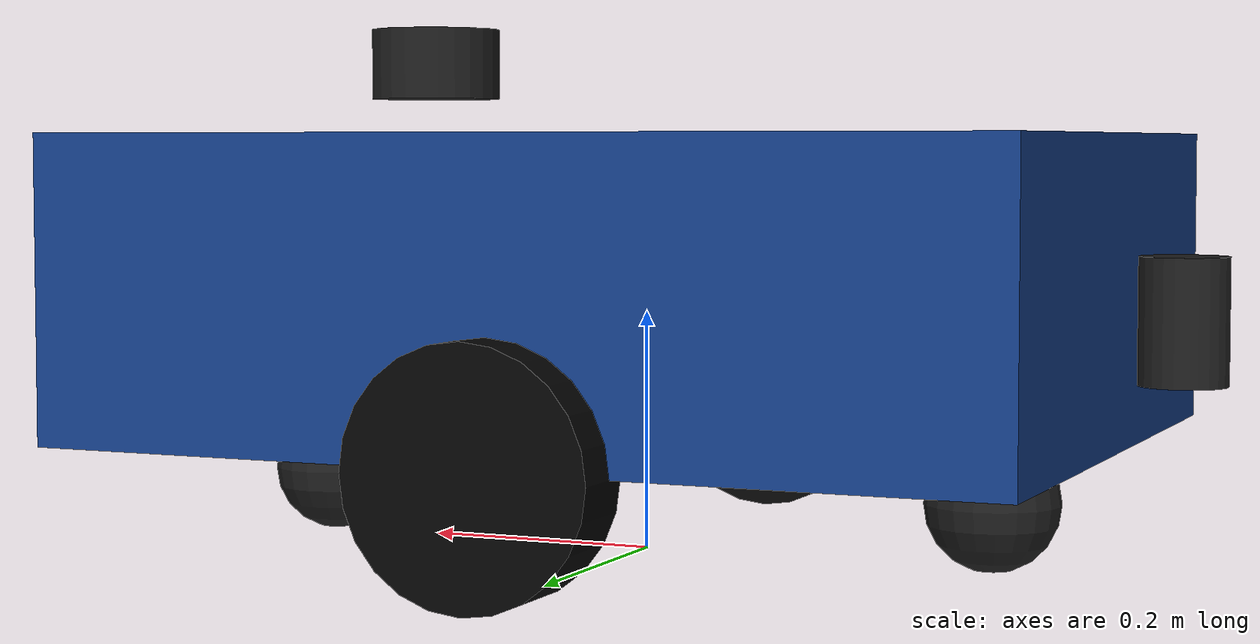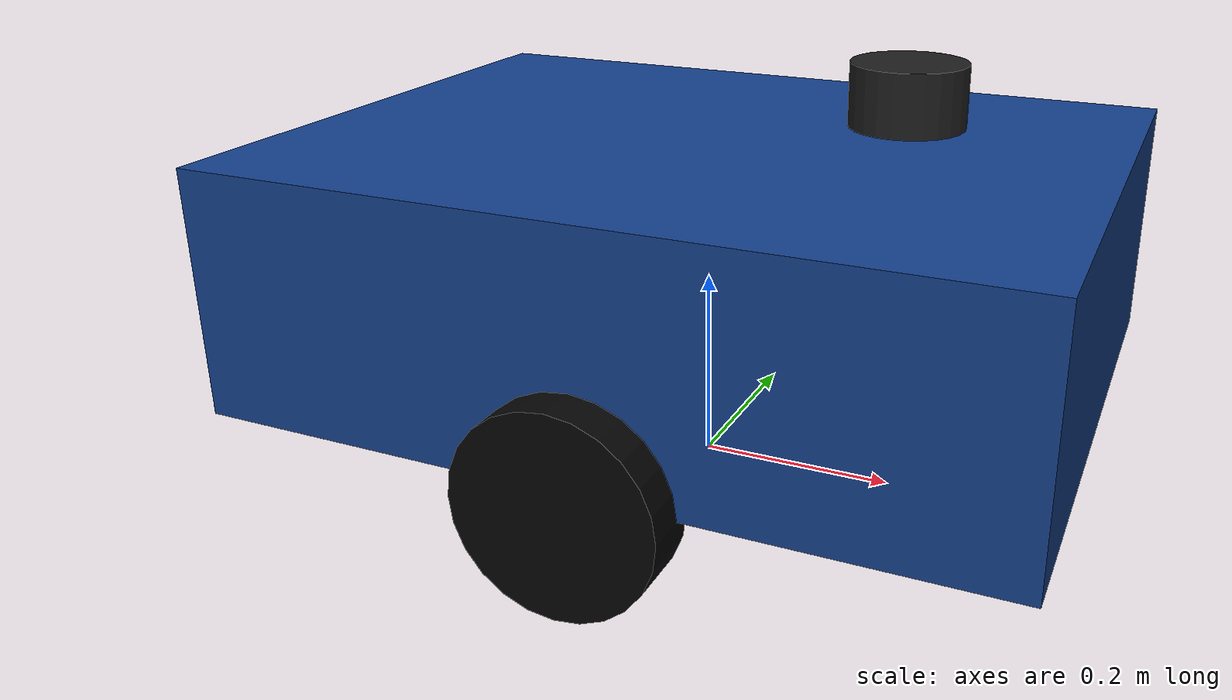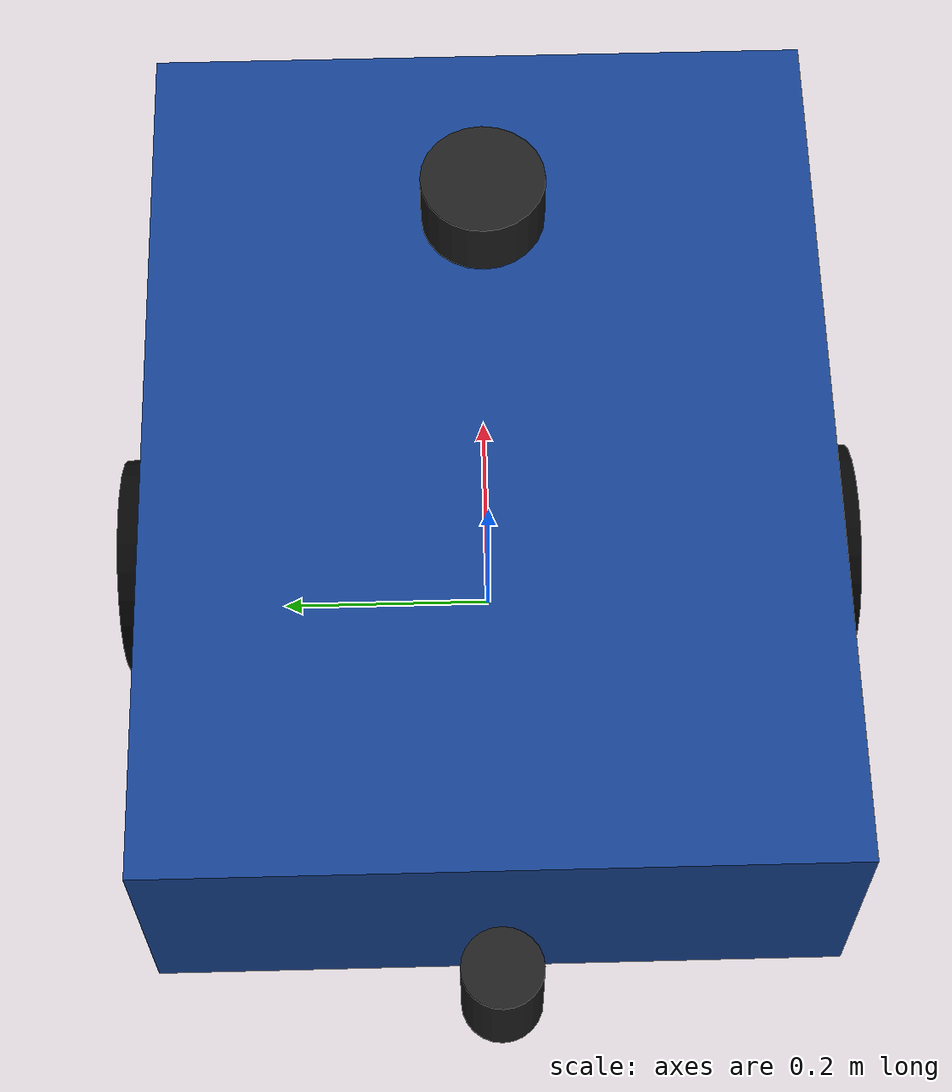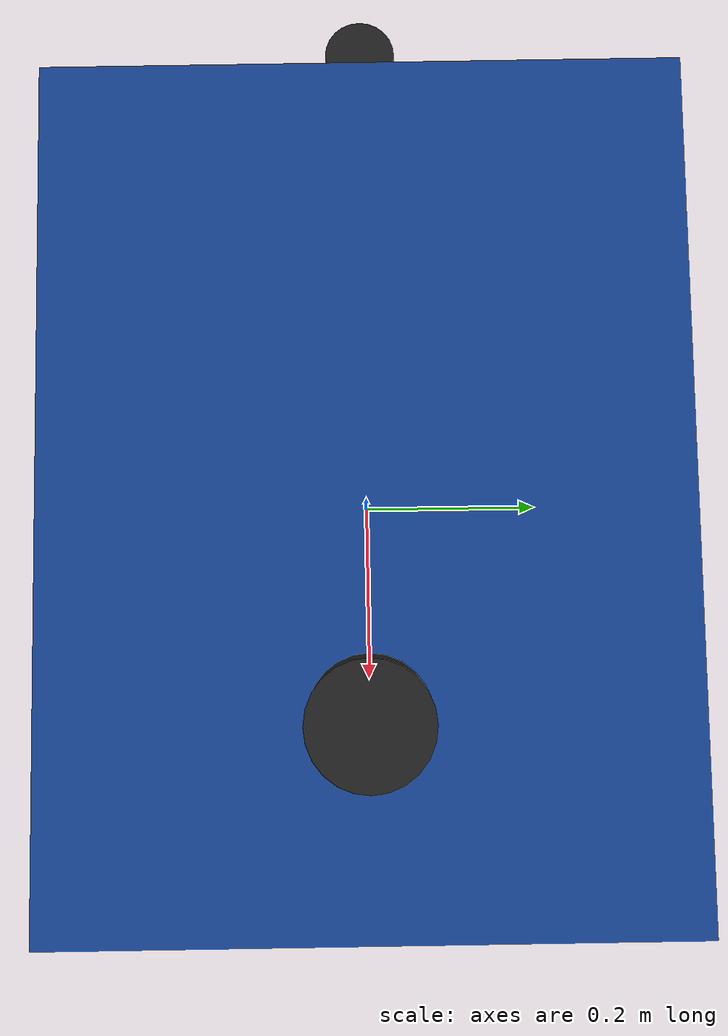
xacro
<?xml version="1.0"?>

<robot xmlns:xacro="http://www.ros.org/wiki/xacro"
       name="autonomous_tugger">

  <!--                    PARAMETERS                             -->

  <xacro:property name="chassis_length" value="0.80"/>
  <xacro:property name="chassis_width"  value="0.60"/>
  <xacro:property name="chassis_height" value="0.25"/>
  <xacro:property name="chassis_mass"   value="45.0"/>

  <xacro:property name="wheel_radius" value="0.10"/>
  <xacro:property name="wheel_width"  value="0.06"/>
  <xacro:property name="wheel_mass"   value="2.0"/>
  <xacro:property name="wheel_y"      value="0.31"/>

  <!--                    MATERIALS                              -->

  <material name="blue">
    <color rgba="0.08 0.25 0.55 1.0"/>
  </material>

  <material name="dark_grey">
    <color rgba="0.12 0.12 0.12 1.0"/>
  </material>

  <material name="black">
    <color rgba="0.02 0.02 0.02 1.0"/>
  </material>

  <!--                   BASE FOOTPRINT                          -->

  <link name="base_footprint"/>

  <joint name="base_footprint_joint" type="fixed">
    <parent link="base_footprint"/>
    <child link="base_link"/>
    <origin xyz="0 0 0.225" rpy="0 0 0"/>
  </joint>

  <!--                     BASE LINK                             -->

  <link name="base_link">

    <visual>
      <geometry>
        <box size="${chassis_length} ${chassis_width} ${chassis_height}"/>
      </geometry>

      <material name="blue"/>
    </visual>

    <collision>
      <geometry>
        <box size="${chassis_length} ${chassis_width} ${chassis_height}"/>
      </geometry>
    </collision>

    <inertial>
      <mass value="${chassis_mass}"/>

      <inertia
        ixx="${(1.0/12.0) * chassis_mass * (chassis_width*chassis_width + chassis_height*chassis_height)}"
        ixy="0"
        ixz="0"
        iyy="${(1.0/12.0) * chassis_mass * (chassis_length*chassis_length + chassis_height*chassis_height)}"
        iyz="0"
        izz="${(1.0/12.0) * chassis_mass * (chassis_length*chassis_length + chassis_width*chassis_width)}"/>
    </inertial>

  </link>

  <!--                    WHEEL MACRO                            -->

  <xacro:macro name="drive_wheel" params="name y">

    <link name="${name}_wheel_link">

      <visual>
        <origin rpy="1.5708 0 0"/>

        <geometry>
          <cylinder
            radius="${wheel_radius}"
            length="${wheel_width}"/>
        </geometry>

        <material name="black"/>
      </visual>

      <collision>
        <origin rpy="1.5708 0 0"/>

        <geometry>
          <cylinder
            radius="${wheel_radius}"
            length="${wheel_width}"/>
        </geometry>
      </collision>

      <inertial>
        <mass value="${wheel_mass}"/>

        <inertia
          ixx="${(1.0/12.0) * wheel_mass * (3*wheel_radius*wheel_radius + wheel_width*wheel_width)}"
          ixy="0"
          ixz="0"
          iyy="${0.5 * wheel_mass * wheel_radius*wheel_radius}"
          iyz="0"
          izz="${(1.0/12.0) * wheel_mass * (3*wheel_radius*wheel_radius + wheel_width*wheel_width)}"/>
      </inertial>

    </link>

    <joint name="${name}_wheel_joint"
           type="continuous">

      <parent link="base_link"/>
      <child link="${name}_wheel_link"/>

      <origin xyz="0 ${y} -0.125"
              rpy="0 0 0"/>

      <axis xyz="0 1 0"/>

    </joint>

  </xacro:macro>

  <xacro:drive_wheel
      name="left"
      y="${wheel_y}"/>

  <xacro:drive_wheel
      name="right"
      y="${-wheel_y}"/>

  <!--                      CASTERS                              -->

  <xacro:macro name="caster" params="name x">

    <link name="${name}_caster_link">

      <visual>
        <geometry>
          <sphere radius="0.055"/>
        </geometry>

        <material name="dark_grey"/>
      </visual>

      <collision>
        <geometry>
          <sphere radius="0.055"/>
        </geometry>
      </collision>

      <inertial>
        <mass value="0.5"/>

        <inertia
          ixx="0.0006"
          ixy="0"
          ixz="0"
          iyy="0.0006"
          iyz="0"
          izz="0.0006"/>
      </inertial>

    </link>

    <joint name="${name}_caster_joint"
           type="fixed">

      <parent link="base_link"/>
      <child link="${name}_caster_link"/>

      <origin xyz="${x} 0 -0.17"
              rpy="0 0 0"/>

    </joint>

  </xacro:macro>

  <xacro:caster
      name="front"
      x="0.30"/>

  <xacro:caster
      name="rear"
      x="-0.30"/>

  <!--                      LIDAR                                -->

  <link name="lidar_link">

    <visual>
      <geometry>
        <cylinder radius="0.055"
                  length="0.06"/>
      </geometry>

      <material name="dark_grey"/>
    </visual>

    <collision>
      <geometry>
        <cylinder radius="0.055"
                  length="0.06"/>
      </geometry>
    </collision>

    <inertial>
      <mass value="0.3"/>

      <inertia
        ixx="0.0002"
        ixy="0"
        ixz="0"
        iyy="0.0002"
        iyz="0"
        izz="0.0002"/>
    </inertial>

  </link>

  <joint name="lidar_joint"
         type="fixed">

    <parent link="base_link"/>
    <child link="lidar_link"/>

    <origin xyz="0.20 0 0.185"
            rpy="0 0 0"/>

  </joint>

  <!--                        IMU                                -->

  <link name="imu_link"/>

  <joint name="imu_joint"
         type="fixed">

    <parent link="base_link"/>
    <child link="imu_link"/>

    <origin xyz="0 0 0"
            rpy="0 0 0"/>

  </joint>

  <!--                       HITCH                               -->

  <link name="hitch_link">

    <visual>
      <geometry>
        <cylinder radius="0.035"
                  length="0.10"/>
      </geometry>

      <material name="dark_grey"/>
    </visual>

  </link>

  <joint name="hitch_joint"
         type="fixed">

    <parent link="base_link"/>
    <child link="hitch_link"/>

    <origin xyz="-0.45 0 -0.02"
            rpy="0 0 0"/>

  </joint>

</robot>
